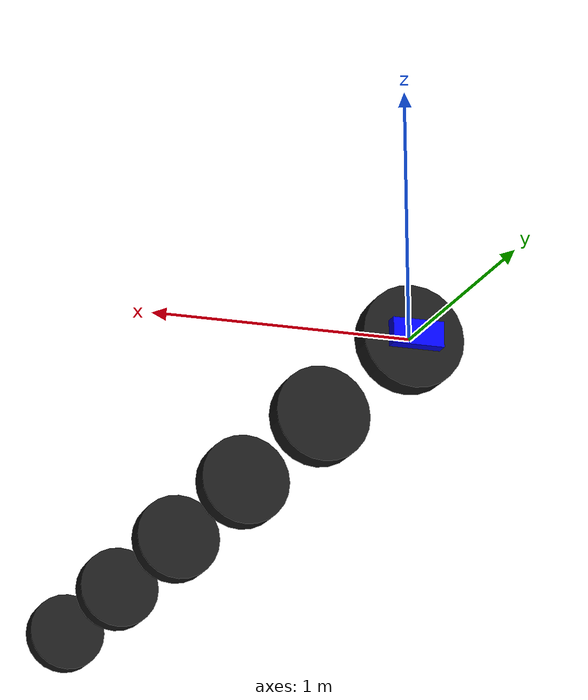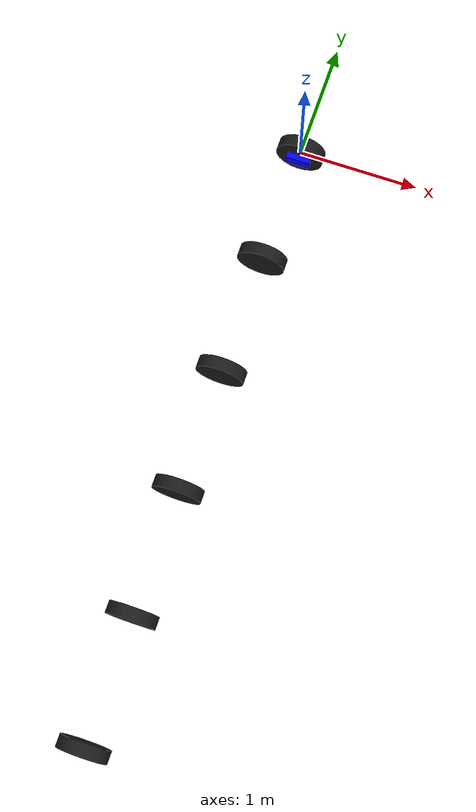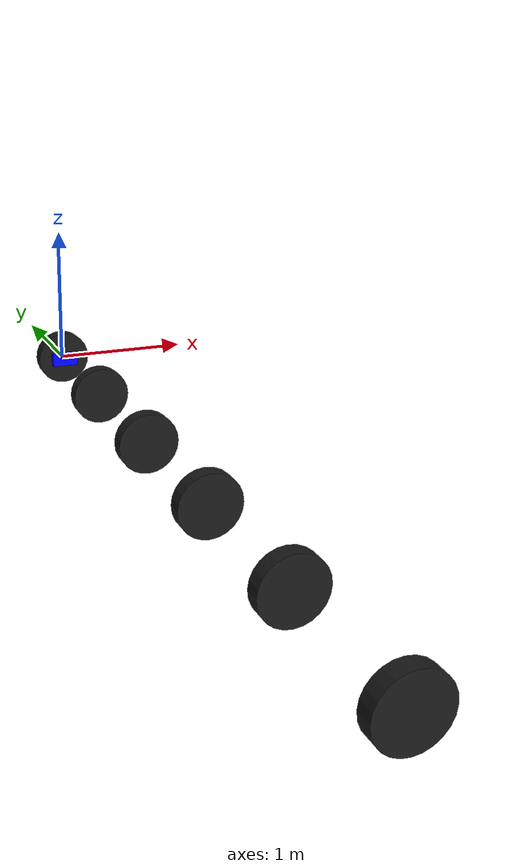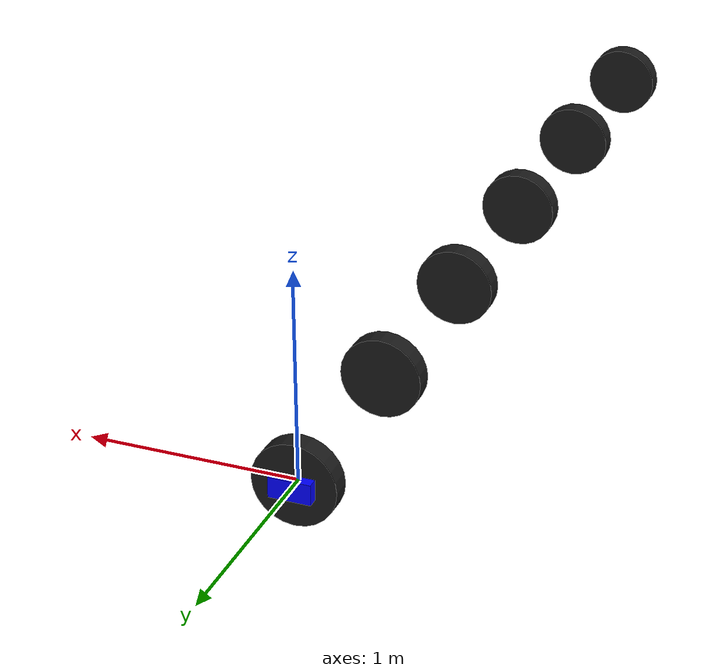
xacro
<?xml version="1.0"?>
<robot name="dummy" xmlns:xacro="http://ros.org/wiki/xacro">
  <!-- Base Link -->
  <link name="base_link">
    <visual>
      <geometry>
        <box size="0.2 0.2 0.1" />
      </geometry>
      <material name="Blue">
        <color rgba="0 0 1 1" />
      </material>
    </visual>
    <collision>
      <geometry>
        <box size="0.2 0.2 0.1" />
      </geometry>
    </collision>
  </link>

  <!-- Link 1 -->
  <link name="link1">
    <visual>
      <geometry>
        <cylinder length="0.1" radius="0.2" />
      </geometry>
      <material name="Black">
        <color rgba="0.1 0.1 0.1 1" />
      </material>
    </visual>
    <collision>
      <geometry>
        <cylinder length="0.1" radius="0.18" />
      </geometry>
    </collision>
    <inertial>
      <mass value="0.5" />
      <inertia ixx="0.01" ixy="0.0" ixz="0.0" iyy="0.01" iyz="0.0" izz="0.005" />
    </inertial>
  </link>

  <!-- Joint 1 -->
  <joint name="joint1" type="continuous">
    <parent link="base_link"/>
    <child link="link1"/>
    <origin xyz="0 0.0 0" rpy="1.5708 0 0"/>
    <axis xyz="0 0 1"/>
  </joint>

  <!-- Link 2 -->
  <link name="link2">
    <visual>
      <geometry>
        <cylinder length="0.1" radius="0.2" />
      </geometry>
      <material name="Black">
        <color rgba="0.1 0.1 0.1 1" />
      </material>
    </visual>
    <collision>
      <geometry>
        <cylinder length="0.1" radius="0.18" />
      </geometry>
    </collision>
    <inertial>
      <mass value="0.5" />
      <inertia ixx="0.01" ixy="0.0" ixz="0.0" iyy="0.01" iyz="0.0" izz="0.005" />
    </inertial>
  </link>

  <!-- Joint 2 -->
  <joint name="joint2" type="continuous">
    <parent link="base_link"/>
    <child link="link2"/>
    <origin xyz="0 -1.0 0" rpy="1.5708 0 0"/>
    <axis xyz="0 0 1"/>
  </joint>

  <!-- Link 3 -->
  <link name="link3">
    <visual>
      <geometry>
        <cylinder length="0.1" radius="0.2" />
      </geometry>
      <material name="Black">
        <color rgba="0.1 0.1 0.1 1" />
      </material>
    </visual>
    <collision>
      <geometry>
        <cylinder length="0.1" radius="0.18" />
      </geometry>
    </collision>
    <inertial>
      <mass value="0.5" />
      <inertia ixx="0.01" ixy="0.0" ixz="0.0" iyy="0.01" iyz="0.0" izz="0.005" />
    </inertial>
  </link>

  <!-- Joint 3 -->
  <joint name="joint3" type="continuous">
    <parent link="base_link"/>
    <child link="link3"/>
    <origin xyz="0 -2.0 0" rpy="1.5708 0 0"/>
    <axis xyz="0 0 1"/>
  </joint>

  <!-- Link 4 -->
  <link name="link4">
    <visual>
      <geometry>
        <cylinder length="0.1" radius="0.2" />
      </geometry>
      <material name="Black">
        <color rgba="0.1 0.1 0.1 1" />
      </material>
    </visual>
    <collision>
      <geometry>
        <cylinder length="0.1" radius="0.18" />
      </geometry>
    </collision>
    <inertial>
      <mass value="0.5" />
      <inertia ixx="0.01" ixy="0.0" ixz="0.0" iyy="0.01" iyz="0.0" izz="0.005" />
    </inertial>
  </link>

  <!-- Joint 4 -->
  <joint name="joint4" type="continuous">
    <parent link="base_link"/>
    <child link="link4"/>
    <origin xyz="0 -3.0 0" rpy="1.5708 0 0"/>
    <axis xyz="0 0 1"/>
  </joint>

<!-- Link 5 -->
  <link name="link5">
    <visual>
      <geometry>
        <cylinder length="0.1" radius="0.2" />
      </geometry>
      <material name="Black">
        <color rgba="0.1 0.1 0.1 1" />
      </material>
    </visual>
    <collision>
      <geometry>
        <cylinder length="0.1" radius="0.18" />
      </geometry>
    </collision>
    <inertial>
      <mass value="0.5" />
      <inertia ixx="0.01" ixy="0.0" ixz="0.0" iyy="0.01" iyz="0.0" izz="0.005" />
    </inertial>
  </link>

  <!-- Joint 5 -->
  <joint name="joint5" type="continuous">
    <parent link="base_link"/>
    <child link="link5"/>
    <origin xyz="0 -4.0 0" rpy="1.5708 0 0"/>
    <axis xyz="0 0 1"/>
  </joint>

<!-- Link 6 -->
  <link name="link6">
    <visual>
      <geometry>
        <cylinder length="0.1" radius="0.2" />
      </geometry>
      <material name="Black">
        <color rgba="0.1 0.1 0.1 1" />
      </material>
    </visual>
    <collision>
      <geometry>
        <cylinder length="0.1" radius="0.18" />
      </geometry>
    </collision>
    <inertial>
      <mass value="0.5" />
      <inertia ixx="0.01" ixy="0.0" ixz="0.0" iyy="0.01" iyz="0.0" izz="0.005" />
    </inertial>
  </link>

  <!-- Joint 6 -->
  <joint name="joint6" type="continuous">
    <parent link="base_link"/>
    <child link="link6"/>
    <origin xyz="0 -5.0 0" rpy="1.5708 0 0"/>
    <axis xyz="0 0 1"/>
  </joint>

  <!-- Include ROS2 control macros for each joint -->
  <xacro:include filename="$(find cybergear_control)/description/ros2_control/multi_dof.ros2_control.urdf.xacro"/>
  <xacro:joint_ros2_control name="CybergearMotorJoint1" canbus="can0" device_id="1" joint_name="joint1"/>
  <xacro:joint_ros2_control name="CybergearMotorJoint2" canbus="can0" device_id="2" joint_name="joint2"/>
  <xacro:joint_ros2_control name="CybergearMotorJoint3" canbus="can0" device_id="3" joint_name="joint3"/>

  <xacro:joint_ros2_control name="CybergearMotorJoint4" canbus="can1" device_id="1" joint_name="joint4"/>
  <xacro:joint_ros2_control name="CybergearMotorJoint5" canbus="can1" device_id="2" joint_name="joint5"/>
  <xacro:joint_ros2_control name="CybergearMotorJoint6" canbus="can1" device_id="3" joint_name="joint6"/>

</robot>
